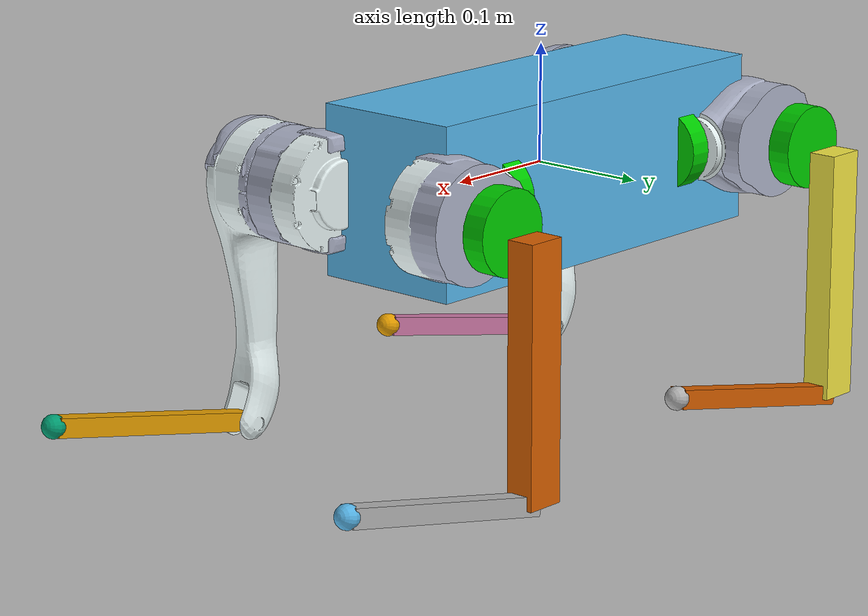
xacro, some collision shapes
<?xml version="1.0"?>

<robot name="go2" xmlns:xacro="http://www.ros.org/wiki/xacro">

    <xacro:arg name="DEBUG" default="false"/>
    <!-- 开关：是否生成 Gazebo 仿真相关的部分 -->
    <xacro:arg name="use_gazebo" default="true"/>

    <!-- 引入其它 xacro：常量尺寸、材质、腿部宏、控制器、Gazebo 插件 -->
    <xacro:include filename="$(find go2w_description)/xacro/const.xacro"/>
    <xacro:include filename="$(find go2w_description)/xacro/materials.xacro"/>
    <xacro:include filename="$(find go2w_description)/xacro/leg.xacro"/>
    <xacro:include filename="$(find go2w_description)/xacro/ros2_control.xacro"/>
    <xacro:include filename="$(find go2w_description)/xacro/gazebo.xacro"/>

    <!-- Rotor related joint and link is only for demonstrate location. -->
    <!-- Actually, the rotor will rotate and the joint is not fixed. Reduction ratio should be considered. -->

    <!-- Debug mode will hung up the robot, use "true" or "false" to switch it. -->
    <!-- 调试模式：把机器人固定在原点（先钉一个 world 坐标系） -->
    <xacro:if value="$(arg DEBUG)">
        <link name="world"/>
        <joint name="base_static_joint" type="fixed">
            <origin rpy="0 0 0" xyz="0 0 0"/>
            <parent link="world"/>
            <child link="base"/>
        </joint>
    </xacro:if>

    <!-- 虚拟根刚体：一个几乎为零大小的方盒，用来挂住整个机器人 -->
    <link name="base">
        <visual>
            <origin rpy="0 0 0" xyz="0 0 0"/>
            <geometry>
                <box size="0.001 0.001 0.001"/>
            </geometry>
        </visual>
    </link>

    <!-- 把躯干固定在虚拟根上 -->
    <joint name="floating_base" type="fixed">
        <origin rpy="0 0 0" xyz="0 0 0"/>
        <parent link="base"/>
        <child link="trunk"/>
    </joint>

    <!-- 躯干：外观用 base.dae 网格；碰撞体用简化长方体；质量由 const.xacro 提供 -->
    <link name="trunk">
        <visual>
            <origin rpy="0 0 0" xyz="0 0 0"/>
            <geometry>
                <mesh filename="package://go2_description/meshes/base.dae" scale="1 1.387 1.250"/>
            </geometry>
        </visual>
        <collision>
            <origin rpy="0 0 0" xyz="0 0 0"/>
            <geometry>
                <box size="${trunk_length} ${trunk_width} ${trunk_height}"/>
            </geometry>
        </collision>
        <inertial>
            <origin rpy="0 0 0" xyz="${trunk_com_x} ${trunk_com_y} ${trunk_com_z}"/>
            <mass value="${trunk_mass}"/>
            <inertia
                ixx="${trunk_ixx}" ixy="${trunk_ixy}" ixz="${trunk_ixz}"
                iyy="${trunk_iyy}" iyz="${trunk_iyz}"
                izz="${trunk_izz}"/>
        </inertial>
    </link>

    <!-- IMU：挂一个近乎无质量的虚拟刚体，Gazebo 会给它发布 IMU 数据 -->
    <joint name="imu_joint" type="fixed">
        <parent link="trunk"/>
        <child link="imu_link"/>
        <origin rpy="0 0 0" xyz="0 0 0"/>
    </joint>

    <link name="imu_link">
        <inertial>
            <mass value="0.001"/>
            <origin rpy="0 0 0" xyz="0 0 0"/>
            <inertia ixx="0.0001" ixy="0" ixz="0" iyy="0.0001" iyz="0" izz="0.0001"/>
        </inertial>
        <visual>
            <origin rpy="0 0 0" xyz="0 0 0"/>
            <geometry>
                <box size="0.001 0.001 0.001"/>
            </geometry>
        </visual>
        <collision>
            <origin rpy="0 0 0" xyz="0 0 0"/>
            <geometry>
                <box size=".001 .001 .001"/>
            </geometry>
        </collision>
    </link>

    <!-- 前置相机：只占一个坐标位置（本项目不真的用它出图） -->
    <joint name="front_camera_joint" type="fixed">
        <parent link="trunk"/>
        <child link="front_camera"/>
        <origin rpy="0 0 0" xyz="0.32715 -0.00003 0.04297"/>
    </joint>

    <link name="front_camera">
    </link>

    <!-- 四条腿：由 leg.xacro 的宏生成，参数区分左/右(mirror)和前/后(front_hind) -->
    <xacro:leg name="FR" mirror="-1" mirror_dae= "False" front_hind="1"  front_hind_dae="True"  />
    <xacro:leg name="FL" mirror="1"  mirror_dae="True"   front_hind="1"  front_hind_dae="True"  />
    <xacro:leg name="RR" mirror="-1" mirror_dae="False"  front_hind="-1" front_hind_dae="False" />
    <xacro:leg name="RL" mirror="1"  mirror_dae="True"   front_hind="-1" front_hind_dae="False" />

    <!-- 只在开启 Gazebo 时才生成控制器与仿真插件部分 -->
    <xacro:if value="$(arg use_gazebo)">
        <xacro:go2_ros2_control/>
        <xacro:go2_gazebo/>
    </xacro:if>
</robot>

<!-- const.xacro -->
<!-- ⚠ 本文件由 go2_description/xacro/const.xacro 派生（Go2-W 无官方 URDF）。
     尺寸按官方站立尺寸换算：宽 ×1.3871（0.31→0.43）、高 ×1.2500（0.40→0.50）；
     腿长沿用 Go2（官方未给腿长），因此站立高度偏矮于 0.50，待官方模型校准。 -->

<robot xmlns:xacro="http://www.ros.org/wiki/xacro">

    <!-- 圆周率，以及一些“几乎为零的质量”（用于转子等纯外观部件） -->
    <!-- Constants for robot dimensions -->
    <xacro:property name="PI" value="3.1415926535897931"/>
    <xacro:property name="stick_mass" value="0.00001"/>

    <!-- 【几何尺寸】躯干的简化碰撞体、髋/大腿/小腿/脚的半径与长宽 -->
    <!-- simplified collision value -->
    <xacro:property name="trunk_width" value="0.1297"/>
    <xacro:property name="trunk_length" value="0.3762"/>
    <xacro:property name="trunk_height" value="0.1425"/>
    <xacro:property name="hip_radius" value="0.046"/>
    <xacro:property name="hip_length" value="0.04"/>
    <xacro:property name="thigh_shoulder_radius" value="0.041"/>
    <xacro:property name="thigh_shoulder_length" value="0.032"/>
    <xacro:property name="thigh_width" value="0.0245"/>
    <xacro:property name="thigh_height" value="0.034"/>
    <xacro:property name="calf_width" value="0.016"/>
    <xacro:property name="calf_height" value="0.016"/>
    <xacro:property name="foot_radius" value="0.02"/>
    <xacro:property name="stick_radius" value="0.01"/>
    <xacro:property name="stick_length" value="0.2"/>

    <!-- 【运动学尺寸】大腿偏移、大腿长、小腿长（决定腿的连杆结构） -->
    <!-- kinematic value -->
    <xacro:property name="thigh_offset" value="0.0955"/>
    <xacro:property name="thigh_length" value="0.213"/>
    <xacro:property name="calf_length" value="0.213"/>

    <!-- 四条腿相对躯干中心的位置偏移 -->
    <!-- leg offset from trunk center value -->
    <xacro:property name="leg_offset_x" value="0.1934"/>
    <xacro:property name="leg_offset_y" value="0.0645"/>
    <xacro:property name="hip_offset" value="0.0955"/>

    <!-- 各刚体相对关节的安装偏移（以左前腿为例，其它腿由镜像参数推导） -->
    <!-- offset of link locations (left front) -->
    <xacro:property name="hip_offset_x" value="0.1934"/>
    <xacro:property name="hip_offset_y" value="0.0645"/>
    <xacro:property name="hip_offset_z" value="0.0"/>
    <xacro:property name="hip_rotor_offset_x" value="0.11215"/>
    <xacro:property name="hip_rotor_offset_y" value="0.04675"/>
    <xacro:property name="hip_rotor_offset_z" value="0.0"/>

    <xacro:property name="thigh_offset_x" value="0"/>
    <xacro:property name="thigh_offset_y" value="0.0955"/>
    <xacro:property name="thigh_offset_z" value="0.0"/>
    <xacro:property name="thigh_rotor_offset_x" value="0.0"/>
    <xacro:property name="thigh_rotor_offset_y" value="-0.00015"/>
    <xacro:property name="thigh_rotor_offset_z" value="0.0"/>

    <xacro:property name="calf_offset_x" value="0.0"/>
    <xacro:property name="calf_offset_y" value="0.0"/>
    <xacro:property name="calf_offset_z" value="-0.213"/>
    <xacro:property name="calf_rotor_offset_x" value="0.0"/>
    <xacro:property name="calf_rotor_offset_y" value="-0.03235"/>
    <xacro:property name="calf_rotor_offset_z" value="0.0"/>

    <!-- 【关节限位】髋/大腿/小腿的角度上下限、力矩与速度上限 -->
    <!-- joint limits -->
    <xacro:property name="damping" value="0.0"/>
    <xacro:property name="friction" value="0.0"/>
    <xacro:property name="hip_position_max" value="1.0472"/>
    <xacro:property name="hip_position_min" value="-1.0472"/>
    <xacro:property name="hip_velocity_max" value="30.1"/>
    <xacro:property name="hip_torque_max" value="23.7"/>
    <xacro:property name="thigh_position_max" value="3.4907"/>
    <xacro:property name="thigh_position_min" value="-1.5708"/>
    <xacro:property name="thigh_velocity_max" value="30.1"/>
    <xacro:property name="thigh_torque_max" value="23.7"/>
    <xacro:property name="calf_position_max" value="-0.83776"/>
    <xacro:property name="calf_position_min" value="-2.7227"/>
    <xacro:property name="calf_velocity_max" value="20.06"/>
    <xacro:property name="calf_torque_max" value="35.55"/>

    <!-- 【动力学参数】各部件的质量与惯量矩阵 -->
    <!-- dynamics inertial value -->
    <!-- 躯干的质量与惯量 -->
    <!-- trunk -->
    <xacro:property name="trunk_mass" value="6.921"/>
    <xacro:property name="trunk_com_x" value="0.021112"/>
    <xacro:property name="trunk_com_y" value="0.00"/>
    <xacro:property name="trunk_com_z" value="-0.005366"/>
    <xacro:property name="trunk_ixx" value="0.02448"/>
    <xacro:property name="trunk_ixy" value="0.00012166"/>
    <xacro:property name="trunk_ixz" value="0.0014849"/>
    <xacro:property name="trunk_iyy" value="0.098077"/>
    <xacro:property name="trunk_iyz" value="-3.12E-05"/>
    <xacro:property name="trunk_izz" value="0.107"/>

    <!-- 髋部的质量与惯量 -->
    <!-- hip (left front) -->
    <xacro:property name="hip_mass" value="0.678"/>
    <xacro:property name="hip_com_x" value="-0.0054"/>
    <xacro:property name="hip_com_y" value="0.00194"/>
    <xacro:property name="hip_com_z" value="-0.000105"/>
    <xacro:property name="hip_ixx" value="0.00048"/>
    <xacro:property name="hip_ixy" value="-3.01E-06"/>
    <xacro:property name="hip_ixz" value="1.11E-06"/>
    <xacro:property name="hip_iyy" value="0.000884"/>
    <xacro:property name="hip_iyz" value="-1.42E-06"/>
    <xacro:property name="hip_izz" value="0.000596"/>

    <xacro:property name="hip_rotor_mass" value="0.089"/>
    <xacro:property name="hip_rotor_com_x" value="0.0"/>
    <xacro:property name="hip_rotor_com_y" value="0.0"/>
    <xacro:property name="hip_rotor_com_z" value="0.0"/>
    <xacro:property name="hip_rotor_ixx" value="0.000111842"/>
    <xacro:property name="hip_rotor_ixy" value="0.0"/>
    <xacro:property name="hip_rotor_ixz" value="0.0"/>
    <xacro:property name="hip_rotor_iyy" value="0.000059647"/>
    <xacro:property name="hip_rotor_iyz" value="0.0"/>
    <xacro:property name="hip_rotor_izz" value="0.000059647"/>

    <!-- 大腿的质量与惯量 -->
    <!-- thigh -->
    <xacro:property name="thigh_mass" value="1.152"/>
    <xacro:property name="thigh_com_x" value="-0.00374"/>
    <xacro:property name="thigh_com_y" value="-0.0223"/>
    <xacro:property name="thigh_com_z" value="-0.0327"/>
    <xacro:property name="thigh_ixx" value="0.00584"/>
    <xacro:property name="thigh_ixy" value="8.72E-05"/>
    <xacro:property name="thigh_ixz" value="-0.000289"/>
    <xacro:property name="thigh_iyy" value="0.0058"/>
    <xacro:property name="thigh_iyz" value="0.000808"/>
    <xacro:property name="thigh_izz" value="0.00103"/>

    <xacro:property name="thigh_rotor_mass" value="0.089"/>
    <xacro:property name="thigh_rotor_com_x" value="0.0"/>
    <xacro:property name="thigh_rotor_com_y" value="0.0"/>
    <xacro:property name="thigh_rotor_com_z" value="0.0"/>
    <xacro:property name="thigh_rotor_ixx" value="0.000059647"/>
    <xacro:property name="thigh_rotor_ixy" value="0.0"/>
    <xacro:property name="thigh_rotor_ixz" value="0.0"/>
    <xacro:property name="thigh_rotor_iyy" value="0.000111842"/>
    <xacro:property name="thigh_rotor_iyz" value="0.0"/>
    <xacro:property name="thigh_rotor_izz" value="0.000059647"/>

    <!-- 小腿的质量与惯量 -->
    <!-- calf -->
    <xacro:property name="calf_mass" value="0.154"/>
    <xacro:property name="calf_com_x" value="0.00548"/>
    <xacro:property name="calf_com_y" value="-0.000975"/>
    <xacro:property name="calf_com_z" value="-0.115"/>
    <xacro:property name="calf_ixx" value="0.00108"/>
    <xacro:property name="calf_ixy" value="3.4E-07"/>
    <xacro:property name="calf_ixz" value="1.72E-05"/>
    <xacro:property name="calf_iyy" value="0.0011"/>
    <xacro:property name="calf_iyz" value="8.28E-06"/>
    <xacro:property name="calf_izz" value="3.29E-05"/>

    <xacro:property name="calf_rotor_mass" value="0.089"/>
    <xacro:property name="calf_rotor_com_x" value="0.0"/>
    <xacro:property name="calf_rotor_com_y" value="0.0"/>
    <xacro:property name="calf_rotor_com_z" value="0.0"/>
    <xacro:property name="calf_rotor_ixx" value="0.000059647"/>
    <xacro:property name="calf_rotor_ixy" value="0.0"/>
    <xacro:property name="calf_rotor_ixz" value="0.0"/>
    <xacro:property name="calf_rotor_iyy" value="0.000111842"/>
    <xacro:property name="calf_rotor_iyz" value="0.0"/>
    <xacro:property name="calf_rotor_izz" value="0.000059647"/>

    <!-- 脚的质量与惯量 -->
    <!-- foot -->
    <xacro:property name="foot_mass" value="0.06"/>

</robot>

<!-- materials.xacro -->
<robot>

    <material name="black">
        <color rgba="0.0 0.0 0.0 1.0"/>
    </material>

    <material name="blue">
        <color rgba="0.0 0.0 0.8 1.0"/>
    </material>

    <material name="green">
        <color rgba="0.0 0.8 0.0 1.0"/>
    </material>

    <material name="grey">
        <color rgba="0.2 0.2 0.2 0.0"/>
    </material>

    <material name="silver">
        <color rgba="${233/255} ${233/255} ${216/255} 1.0"/>
    </material>

    <material name="orange">
        <color rgba="${255/255} ${108/255} ${10/255} 1.0"/>
    </material>

    <material name="brown">
        <color rgba="${222/255} ${207/255} ${195/255} 1.0"/>
    </material>

    <material name="red">
        <color rgba="0.8 0.0 0.0 1.0"/>
    </material>

    <material name="white">
        <color rgba="1.0 1.0 1.0 1.0"/>
    </material>

</robot>

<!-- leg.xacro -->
<robot xmlns:xacro="http://www.ros.org/wiki/xacro">

    <xacro:macro name="leg" params="name mirror mirror_dae front_hind front_hind_dae">

        <!-- 髋关节：可转动，绕 x 轴；父级是躯干 -->
        <joint name="${name}_hip_joint" type="revolute">
            <xacro:if value="${(mirror_dae == False) and (front_hind_dae == True)}">
                <origin rpy="0 0 0" xyz="${leg_offset_x} ${-leg_offset_y} 0"/>
            </xacro:if>
            <xacro:if value="${(mirror_dae == True) and (front_hind_dae == True)}">
                <origin rpy="0 0 0" xyz="${leg_offset_x} ${leg_offset_y} 0"/>
            </xacro:if>
            <xacro:if value="${(mirror_dae == False) and (front_hind_dae == False)}">
                <origin rpy="0 0 0" xyz="${-leg_offset_x} ${-leg_offset_y} 0"/>
            </xacro:if>
            <xacro:if value="${(mirror_dae == True) and (front_hind_dae == False)}">
                <origin rpy="0 0 0" xyz="${-leg_offset_x} ${leg_offset_y} 0"/>
            </xacro:if>
            <parent link="trunk"/>
            <child link="${name}_hip"/>
            <axis xyz="1 0 0"/>
            <dynamics damping="${damping}" friction="${friction}"/>
            <xacro:if value="${(mirror_dae == True)}">
                <limit effort="${hip_torque_max}" velocity="${hip_velocity_max}" lower="${hip_position_min}" upper="${hip_position_max}"/>
            </xacro:if>
            <xacro:if value="${(mirror_dae == False)}">
                <limit effort="${hip_torque_max}" velocity="${hip_velocity_max}" lower="${-hip_position_max}" upper="${-hip_position_min}"/>
            </xacro:if>
        </joint>

        <!-- 髋部的“转子”固定关节（纯外观，模拟电机外壳） -->
        <joint name="${name}_hip_rotor_joint" type="fixed">
            <xacro:if value="${(mirror_dae == False) and (front_hind_dae == True)}">
                <origin rpy="0 0 0" xyz="${hip_rotor_offset_x} ${-hip_rotor_offset_y} 0"/>
            </xacro:if>
            <xacro:if value="${(mirror_dae == True) and (front_hind_dae == True)}">
                <origin rpy="0 0 0" xyz="${hip_rotor_offset_x} ${hip_rotor_offset_y} 0"/>
            </xacro:if>
            <xacro:if value="${(mirror_dae == False) and (front_hind_dae == False)}">
                <origin rpy="0 0 0" xyz="${-hip_rotor_offset_x} ${-hip_rotor_offset_y} 0"/>
            </xacro:if>
            <xacro:if value="${(mirror_dae == True) and (front_hind_dae == False)}">
                <origin rpy="0 0 0" xyz="${-hip_rotor_offset_x} ${hip_rotor_offset_y} 0"/>
            </xacro:if>
            <parent link="trunk"/>
            <child link="${name}_hip_rotor"/>
        </joint>

        <!-- 髋部刚体：外观网格 + 简化碰撞体 + 质量/惯量（数值来自 const.xacro） -->
        <link name="${name}_hip">
            <visual>
                <xacro:if value="${(mirror_dae == True) and (front_hind_dae == True)}">
                    <origin rpy="0 0 0" xyz="0 0 0"/>
                </xacro:if>
                <xacro:if value="${(mirror_dae == False) and (front_hind_dae == True)}">
                    <origin rpy="${PI} 0 0" xyz="0 0 0"/>
                </xacro:if>
                <xacro:if value="${(mirror_dae == True) and (front_hind_dae == False)}">
                    <origin rpy="0 ${PI} 0" xyz="0 0 0"/>
                </xacro:if>
                <xacro:if value="${(mirror_dae == False) and (front_hind_dae == False)}">
                    <origin rpy="${PI} ${PI} 0" xyz="0 0 0"/>
                </xacro:if>
                <geometry>
                    <mesh filename="package://go2_description/meshes/hip.dae" scale="1 1 1"/>
                </geometry>
            </visual>
            <collision name="${name}_foot_collision">
                <origin rpy="${PI/2.0} 0 0" xyz="0 ${hip_offset*mirror} 0"/>
                <geometry>
                    <cylinder length="${hip_length}" radius="${hip_radius}"/>
                </geometry>
            </collision>
            <inertial>
                <origin rpy="0 0 0" xyz="${hip_com_x*front_hind} ${hip_com_y*mirror} ${hip_com_z}"/>
                <mass value="${hip_mass}"/>
                <inertia
                    ixx="${hip_ixx}" ixy="${hip_ixy*mirror*front_hind}" ixz="${hip_ixz*front_hind}"
                    iyy="${hip_iyy}" iyz="${hip_iyz*mirror}"
                    izz="${hip_izz}"/>
            </inertial>
        </link>

        <link name="${name}_hip_rotor">
            <visual>
                <origin rpy="0 ${PI/2.0} 0" xyz="0 0 0"/>
                <geometry>
                    <cylinder length="0.02" radius="0.035"/>
                </geometry>
                <material name="green"/>
            </visual>
            <inertial>
                <origin rpy="0 0 0" xyz="${hip_rotor_com_x} ${hip_rotor_com_y} ${hip_rotor_com_z}"/>
                <mass value="${hip_rotor_mass}"/>
                <inertia
                    ixx="${hip_rotor_ixx}" ixy="${hip_rotor_ixy}" ixz="${hip_rotor_ixz}"
                    iyy="${hip_rotor_iyy}" iyz="${hip_rotor_iyz}"
                    izz="${hip_rotor_izz}"/>
            </inertial>
        </link>

        <!-- 大腿关节：绕 y 轴转；带角度限位 -->
        <joint name="${name}_thigh_joint" type="revolute">
            <origin rpy="0 0 0" xyz="0 ${thigh_offset*mirror} 0"/>
            <parent link="${name}_hip"/>
            <child link="${name}_thigh"/>
            <axis xyz="0 1 0"/>
            <dynamics damping="${damping}" friction="${friction}"/>
            <limit effort="${thigh_torque_max}" velocity="${thigh_velocity_max}" lower="${thigh_position_min}" upper="${thigh_position_max}"/>
        </joint>

        <joint name="${name}_thigh_rotor_joint" type="fixed">
            <origin rpy="0 0 0" xyz="${thigh_rotor_offset_x} ${thigh_rotor_offset_y*mirror} 0"/>
            <parent link="${name}_hip"/>
            <child link="${name}_thigh_rotor"/>
        </joint>

        <!-- 大腿刚体 -->
        <link name="${name}_thigh">
            <visual>
                <origin rpy="0 0 0" xyz="0 0 0"/>
                <geometry>
                    <xacro:if value="${mirror_dae == True}">
                        <mesh filename="package://go2_description/meshes/thigh.dae" scale="1 1 1"/>
                    </xacro:if>
                    <xacro:if value="${mirror_dae == False}">
                        <mesh filename="package://go2_description/meshes/thigh_mirror.dae" scale="1 1 1"/>
                    </xacro:if>
                </geometry>
            </visual>
            <collision>
                <origin rpy="0 ${PI/2.0} 0" xyz="0 0 ${-thigh_length/2.0}"/>
                <geometry>
                    <box size="${thigh_length} ${thigh_width} ${thigh_height}"/>
                </geometry>
            </collision>
            <inertial>
                <origin rpy="0 0 0" xyz="${thigh_com_x} ${thigh_com_y*mirror} ${thigh_com_z}"/>
                <mass value="${thigh_mass}"/>
                <inertia
                    ixx="${thigh_ixx}" ixy="${thigh_ixy*mirror}" ixz="${thigh_ixz}"
                    iyy="${thigh_iyy}" iyz="${thigh_iyz*mirror}"
                    izz="${thigh_izz}"/>
            </inertial>
        </link>

        <link name="${name}_thigh_rotor">
            <visual>
                <origin rpy="${PI/2.0} 0 0" xyz="0 0 0"/>
                <geometry>
                    <cylinder length="0.02" radius="0.035"/>
                </geometry>
                <material name="green"/>
            </visual>
            <inertial>
                <origin rpy="0 0 0" xyz="${thigh_rotor_com_x} ${thigh_rotor_com_y} ${thigh_rotor_com_z}"/>
                <mass value="${thigh_rotor_mass}"/>
                <inertia
                    ixx="${thigh_rotor_ixx}" ixy="${thigh_rotor_ixy}" ixz="${thigh_rotor_ixz}"
                    iyy="${thigh_rotor_iyy}" iyz="${thigh_rotor_iyz}"
                    izz="${thigh_rotor_izz}"/>
            </inertial>
        </link>

        <!-- 小腿（膝盖）关节 -->
        <joint name="${name}_calf_joint" type="revolute">
            <origin rpy="0 0 0" xyz="0 0 ${-thigh_length}"/>
            <parent link="${name}_thigh"/>
            <child link="${name}_calf"/>
            <axis xyz="0 1 0"/>
            <dynamics damping="${damping}" friction="${friction}"/>
            <limit effort="${calf_torque_max}" velocity="${calf_velocity_max}" lower="${calf_position_min}" upper="${calf_position_max}"/>
        </joint>

        <joint name="${name}_calf_rotor_joint" type="fixed">
            <origin rpy="0 0 0" xyz="${calf_rotor_offset_x} ${calf_rotor_offset_y*mirror} 0"/>
            <parent link="${name}_thigh"/>
            <child link="${name}_calf_rotor"/>
        </joint>

        <!-- 小腿刚体 -->
        <link name="${name}_calf">
            <visual>
                <origin rpy="0 0 0" xyz="0 0 0"/>
                <geometry>
                    <mesh filename="package://go2_description/meshes/calf.dae" scale="1 1 1"/>
                </geometry>
            </visual>
            <collision>
                <origin rpy="0 ${PI/2.0} 0" xyz="0 0 ${-calf_length/2.0}"/>
                <geometry>
                    <box size="${calf_length} ${calf_width} ${calf_height}"/>
                </geometry>
            </collision>
            <inertial>
                <origin rpy="0 0 0" xyz="${calf_com_x} ${calf_com_y} ${calf_com_z}"/>
                <mass value="${calf_mass}"/>
                <inertia
                    ixx="${calf_ixx}" ixy="${calf_ixy}" ixz="${calf_ixz}"
                    iyy="${calf_iyy}" iyz="${calf_iyz}"
                    izz="${calf_izz}"/>
            </inertial>
        </link>

        <link name="${name}_calf_rotor">
            <visual>
                <origin rpy="${PI/2.0} 0 0" xyz="0 0 0"/>
                <geometry>
                    <cylinder length="0.02" radius="0.035"/>
                </geometry>
                <material name="green"/>
            </visual>
            <inertial>
                <origin rpy="0 0 0" xyz="${calf_rotor_com_x} ${calf_rotor_com_y} ${calf_rotor_com_z}"/>
                <mass value="${calf_rotor_mass}"/>
                <inertia
                    ixx="${calf_rotor_ixx}" ixy="${calf_rotor_ixy}" ixz="${calf_rotor_ixz}"
                    iyy="${calf_rotor_iyy}" iyz="${calf_rotor_iyz}"
                    izz="${calf_rotor_izz}"/>
            </inertial>
        </link>

        <!-- 脚：固定在小腿末端，用一个小球做碰撞体 -->
        <joint name="${name}_foot_fixed" type="fixed">
            <origin rpy="0 0 0" xyz="0 0 ${-(calf_length)}"/>
            <parent link="${name}_calf"/>
            <child link="${name}_foot"/>
        </joint>

        <!-- 脚刚体（Gazebo 的接触力传感器就是挂在它上面） -->
        <link name="${name}_foot">
            <visual>
                <origin rpy="0 0 0" xyz="0 0 0"/>
                <geometry>
                    <sphere radius="${foot_radius-0.01}"/>
                </geometry>
            </visual>
            <collision>
                <origin rpy="0 0 0" xyz="0 0 0"/>
                <geometry>
                    <sphere radius="${foot_radius}"/>
                </geometry>
            </collision>
            <inertial>
                <mass value="${foot_mass}"/>
                <inertia
                    ixx="${(2*foot_mass)/5.0*(foot_radius*foot_radius)}" ixy="0.0" ixz="0.0"
                    iyy="${(2*foot_mass)/5.0*(foot_radius*foot_radius)}" iyz="0.0"
                    izz="${(2*foot_mass)/5.0*(foot_radius*foot_radius)}"/>
            </inertial>
        </link>

    </xacro:macro>
</robot>
